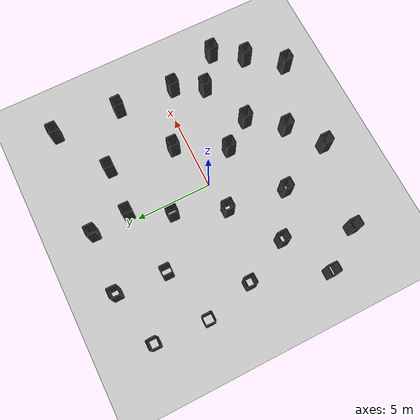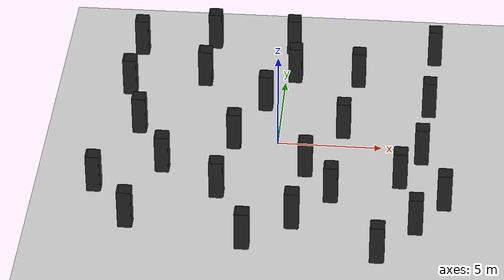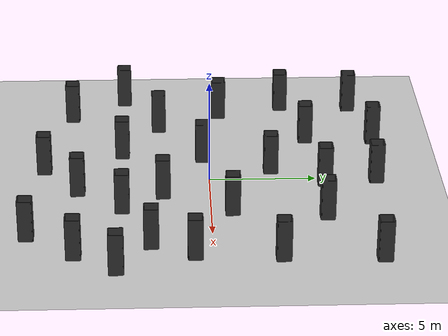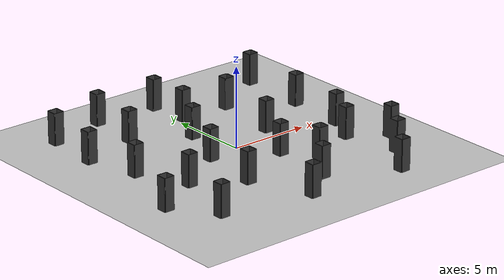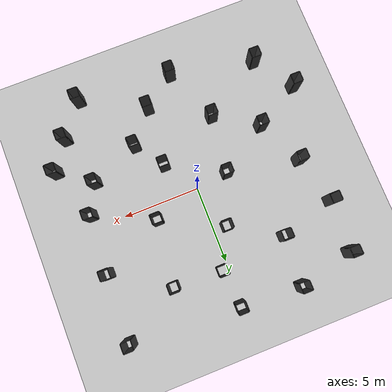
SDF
<?xml version="1.0" ?>
<sdf version="1.6">

  <world name="pot_func_map_world">
    <plugin filename="gz-sim-physics-system"
      name="gz::sim::systems::Physics"/>
    <plugin filename="gz-sim-user-commands-system"
      name="gz::sim::systems::UserCommands"/>
    <plugin filename="gz-sim-scene-broadcaster-system"
      name="gz::sim::systems::SceneBroadcaster"/>
    <plugin filename="libgz-sim-sensors-system.so"
      name="gz::sim::systems::Sensors">
      <render_engine>ogre2</render_engine>
    </plugin>

    <include>
      <uri>https://fuel.gazebosim.org/1.0/OpenRobotics/models/Ground Plane</uri>
    </include>

    <include>
      <uri>https://fuel.gazebosim.org/1.0/OpenRobotics/models/Sun</uri>
    </include>

    <model name="pot_func_map">
      <static>true</static>
      <pose>0 0 0 0 0 0</pose>
      <link name="link">
        <collision name="collision">
          <geometry>
            <mesh>
              <uri>meshes/pot_func_map.stl</uri>
            </mesh>
          </geometry>
        </collision>
        <visual name="visual">
          <geometry>
            <mesh>
              <uri>meshes/pot_func_map.stl</uri>
            </mesh>
          </geometry>
          <material>
            <ambient>0.2 0.2 0.2 1</ambient>
            <diffuse>0.2 0.2 0.2 1</diffuse>
            <specular>0.1 0.1 0.1 1</specular>
          </material>
        </visual>
      </link>
    </model>

    <scene>
      <shadows>false</shadows>
    </scene>

    <physics type="ode">
      <real_time_update_rate>1000.0</real_time_update_rate>
      <max_step_size>0.001</max_step_size>
      <real_time_factor>1</real_time_factor>
      <ode>
        <solver>
          <type>quick</type>
          <iters>150</iters>
          <precon_iters>0</precon_iters>
          <sor>1.400000</sor>
          <use_dynamic_moi_rescaling>1</use_dynamic_moi_rescaling>
        </solver>
        <constraints>
          <cfm>0.00001</cfm>
          <erp>0.2</erp>
          <contact_max_correcting_vel>2000.000000</contact_max_correcting_vel>
          <contact_surface_layer>0.01000</contact_surface_layer>
        </constraints>
      </ode>
    </physics>

  </world>
</sdf>
